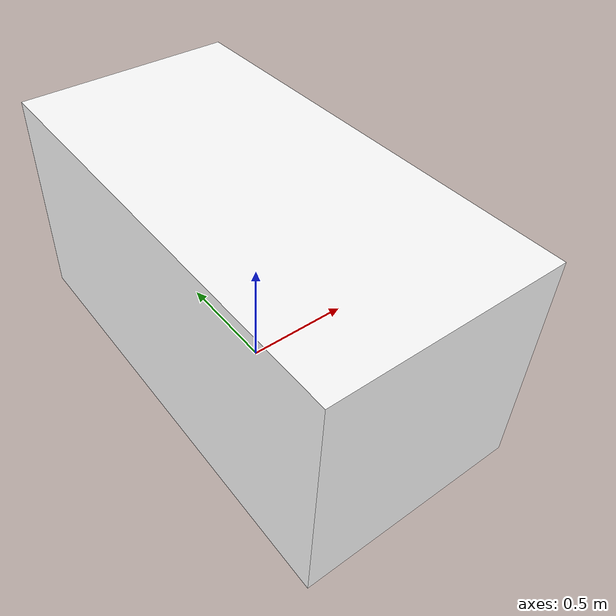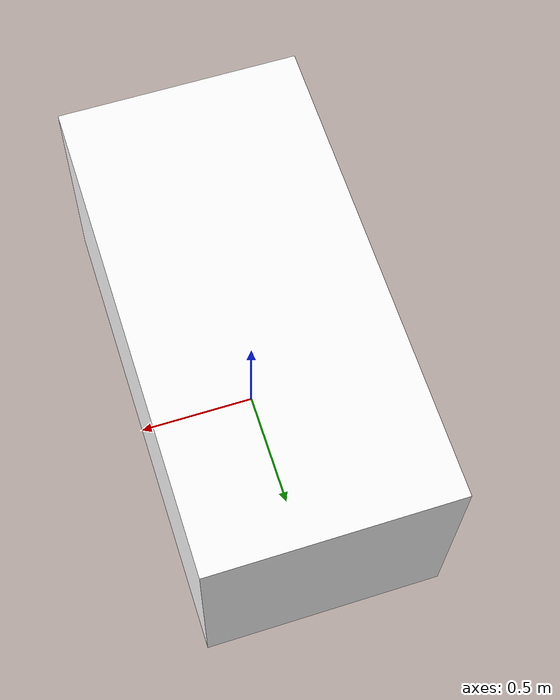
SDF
<sdf version="1.6">
  <model name="base_table">
    <static>true</static>  <!-- Make it static so that it doesn’t move -->

    <!-- Define the base link -->
    <link name="base">
      <!-- Visual properties -->
      <visual name="visual">
        <pose>0 0 0.5 0 0 0</pose>  <!-- Set the visual position and orientation -->
        <geometry>
          <box>
            <size>1 2 1</size>  <!-- Box dimensions: 1m x 2m x 1m -->
          </box>
        </geometry>
        <material>
          <ambient>1.0 1.0 1.0 1.0</ambient>
          <diffuse>1.0 1.0 1.0 1.0</diffuse>
        </material>
      </visual>

      <!-- Collision properties -->
      <collision name="collision">
        <pose>0 0 0.5 0 0 0</pose>  <!-- Set the collision position and orientation -->
        <geometry>
          <box>
            <size>1 2 1</size>  <!-- Same box dimensions for collision -->
          </box>
        </geometry>
      </collision>

      <!-- Inertial properties -->
      <inertial>
        <mass>10.0</mass>
        <inertia>
          <ixx>0.001</ixx>
          <iyy>0.001</iyy>
          <izz>0.001</izz>
          <ixy>0.0</ixy>
          <ixz>0.0</ixz>
          <iyz>0.0</iyz>
        </inertia>
      </inertial>
    </link>

    <!-- Define the fixed joint to the world -->
    <joint name="base_to_world" type="fixed">
      <parent>world</parent>
      <child>base</child>
      <pose>0 0 0 0 0 0</pose>
    </joint>
  </model>
</sdf>
